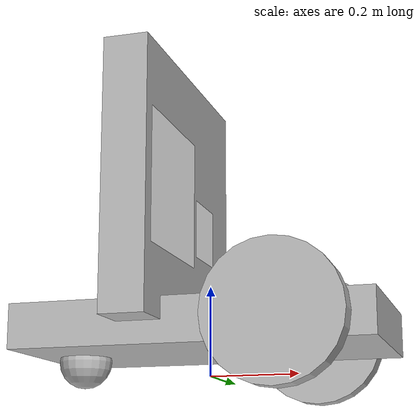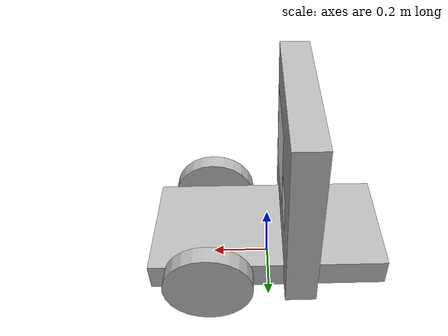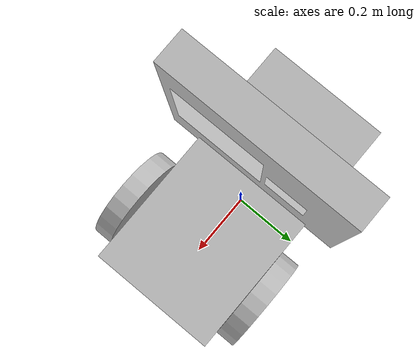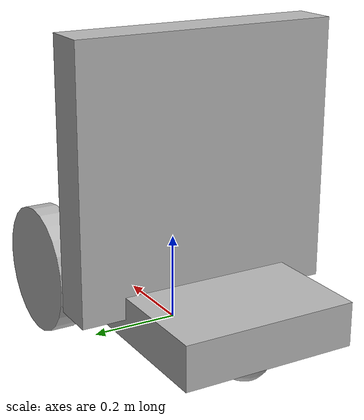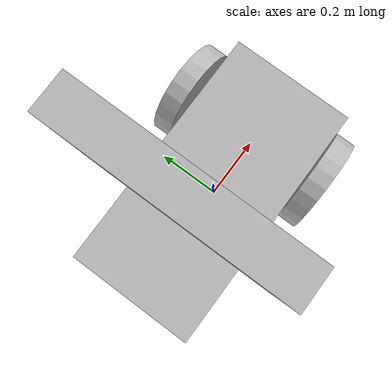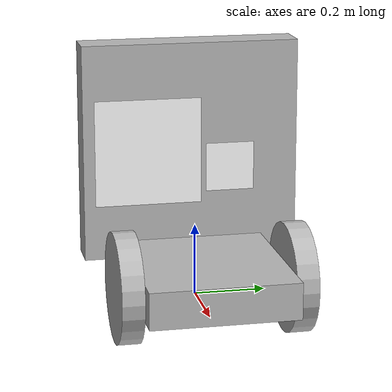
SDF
<?xml version='1.0'?>
<sdf version='1.5'>
  <model name='me439_robot'>
    <static>false</static>
    <link name='chassis'>
      <pose>0 0 .1 0 0 0</pose>
      <inertial>
        <mass>1.0</mass>
        <inertia> <!-- inertias are tricky to compute -->
          <ixx>0.083</ixx>       <!-- for a box: ixx = 0.083 * mass * (y*y + z*z) -->
          <ixy>0.0</ixy>         <!-- for a box: ixy = 0 -->
          <ixz>0.0</ixz>         <!-- for a box: ixz = 0 -->
          <iyy>0.083</iyy>       <!-- for a box: iyy = 0.083 * mass * (x*x + z*z) -->
          <iyz>0.0</iyz>         <!-- for a box: iyz = 0 -->
          <izz>0.083</izz>       <!-- for a box: izz = 0.083 * mass * (x*x + y*y) -->
        </inertia>
      </inertial>

      <collision name='collision'>
        <geometry>
          <box>
            <size>.8 .4 .1</size>
          </box>
        </geometry>
      </collision>

      <visual name='visual'>
        <geometry>
          <box>
            <size>.8 .4 .1</size>
          </box>
        </geometry>
      </visual>

      <collision name='caster_collision'>
        <pose>-0.3 0 -0.06 0 0 0</pose>
        <geometry>
            <sphere>
            <radius>.06</radius>
          </sphere>
        </geometry>

        <surface>
          <friction>
            <ode>
              <mu>0</mu>
              <mu2>0</mu2>
              <slip1>1.0</slip1>
              <slip2>1.0</slip2>
            </ode>
          </friction>
        </surface>
      </collision>

      <visual name='caster_visual'>
        <pose>-0.3 0 -0.06 0 0 0</pose>
        <geometry>
          <sphere>
            <radius>.06</radius>
          </sphere>
        </geometry>
      </visual>

    </link>

    <link name = "vertical_link">
      <pose relative_to = "chassis" >-0.1 0 0.3 0 0 0</pose>
       <collision name="vertical_collision">
        <inertial>
          <mass>1.0</mass>
          <inertia> <!-- inertias are tricky to compute -->
            <ixx>0.083</ixx>       <!-- for a box: ixx = 0.083 * mass * (y*y + z*z) -->
            <ixy>0.0</ixy>         <!-- for a box: ixy = 0 -->
            <ixz>0.0</ixz>         <!-- for a box: ixz = 0 -->
            <iyy>0.083</iyy>       <!-- for a box: iyy = 0.083 * mass * (x*x + z*z) -->
            <iyz>0.0</iyz>         <!-- for a box: iyz = 0 -->
            <izz>0.083</izz>       <!-- for a box: izz = 0.083 * mass * (x*x + y*y) -->
          </inertia>
        </inertial>
        <geometry>
          <box>
            <size>0.1 0.6 0.60</size>
          </box>
        </geometry>
      </collision>
      <visual name="vertical_visual">
        <geometry>
          <box>
            <size>0.1 0.6 0.60</size>
          </box>
        </geometry>
      </visual>
    </link>

    <link name="aruco_marker_link">
      <pose relative_to = "vertical_link" >0.051 -0.12 0.0 3.1415 1.5708 0</pose>
      <visual name='visual'>
        <geometry>
          <box>
            <size>0.296 0.296 1e-5</size>
          </box>
        </geometry>
        <material>
          <script>
            <uri>model://moving_platform_with_aruco/materials/scripts</uri>
            <uri>model://moving_platform_with_aruco/materials/textures</uri>
            <name>ArucoVisualMarker1/Marker</name>
          </script>
          <ambient>1 1 1 1</ambient>
          <diffuse>1 1 1 1</diffuse>
          <specular>0 0 0 1</specular>
          <emissive>1 1 1 0</emissive>
          <shader type='vertex'>
            <normal_map>__default__</normal_map>
          </shader>
        </material>
        <cast_shadows>1</cast_shadows>
        <transparency>0</transparency>
      </visual>
    </link>
    <link name="aruco_marker_link_2">
      <pose relative_to = "vertical_link" >0.051 0.11 -0.05 3.1415 1.5708 0 </pose>
      <visual name='visual'>
        <geometry>
          <box>
            <size>0.1355 0.1355 1e-5</size>
          </box>
        </geometry>
        <material>
          <script>
            <uri>model://marker_0/materials/scripts</uri>
            <uri>model://marker_0/materials/textures</uri>
            <name>ArucoVisualMarker0/Marker</name>
          </script>
          <ambient>1 1 1 1</ambient>
          <diffuse>1 1 1 1</diffuse>
          <specular>0 0 0 1</specular>
          <emissive>1 1 1 0</emissive>
          <shader type='vertex'>
            <normal_map>__default__</normal_map>
          </shader>
        </material>
        <cast_shadows>1</cast_shadows>
        <transparency>0</transparency>
      </visual>
    </link>
    <link name="left_wheel">
      <pose>0.2 0.23 0.1 0 1.5707 1.5707</pose>
      <collision name="collision">
        <geometry>
          <cylinder>
            <radius>.15</radius>
            <length>.06</length>
          </cylinder>
        </geometry>
      </collision>
      <visual name="visual">
        <geometry>
          <cylinder>
            <radius>.15</radius>
            <length>.06</length>
          </cylinder>
        </geometry>
      </visual>
    </link>

    <link name="right_wheel">
      <pose>0.2 -0.23 0.1 0 1.5707 1.5707</pose>
      <collision name="collision">
        <geometry>
          <cylinder>
            <radius>.15</radius>
            <length>.06</length>
          </cylinder>
        </geometry>
      </collision>
      <visual name="visual">
        <geometry>
          <cylinder>
            <radius>.15</radius>
            <length>.06</length>
          </cylinder>
        </geometry>
      </visual>
    </link>
    <joint name="vertical_platform" type="fixed" >
      <pose>0 0 0 0 0 0</pose>
      <child>vertical_link</child>
      <parent>chassis</parent>
      <axis>
        <xyz>0 0 0</xyz>
      </axis>
    </joint>
    <joint name="aruco_1_fix" type="fixed" >
      <pose>0 0 0 0 0 0</pose>
      <child>aruco_marker_link</child>
      <parent>vertical_link</parent>
      <axis>
        <xyz>0 0 0</xyz>
      </axis>
    </joint>
    <joint name="aruco_2_fix" type="fixed" >
      <pose>0 0 0 0 0 0</pose>
      <child>aruco_marker_link_2</child>
      <parent>vertical_link</parent>
      <axis>
        <xyz>0 0 0</xyz>
      </axis>
    </joint>
    <joint name="left_wheel_hinge" type="revolute" >
      <pose>0 0 0 0 0 0</pose>
      <child>left_wheel</child>
      <parent>chassis</parent>
      <axis>
        <xyz>0 0 1</xyz>
      </axis>
    </joint>

    <joint name="right_wheel_hinge" type="revolute">
      <pose>0 0 0 0 0 0</pose>
      <child>right_wheel</child>
      <parent>chassis</parent>
      <axis>
        <xyz>0 0 1</xyz>
      </axis>
    </joint>
    <plugin filename="libgazebo_ros_diff_drive.so" name="model_diff_drive_plugin">
      <ros>
        <namespace>/platform_robot</namespace>
        <remapping>cmd_vel:=cmd_platform_robot</remapping>
        <remapping>odom:=odom_platform_robot</remapping>
      </ros>

      <!-- kinematics -->
      <wheel_separation>0.46</wheel_separation>
      <wheel_diameter>0.3</wheel_diameter>
      <!-- wheels -->
      <left_joint>left_wheel_hinge</left_joint>
      <right_joint>right_wheel_hinge</right_joint>
      <!-- output -->
      <publish_odom>true</publish_odom>

    </plugin>
  </model>
</sdf>
